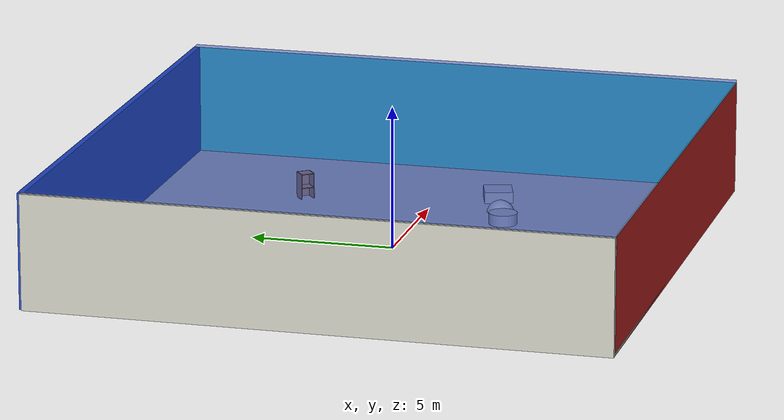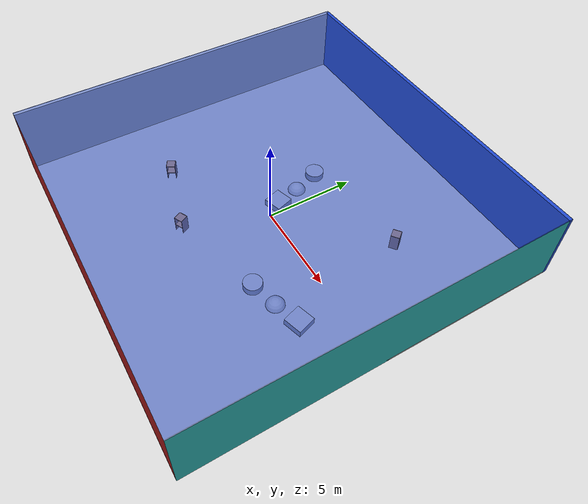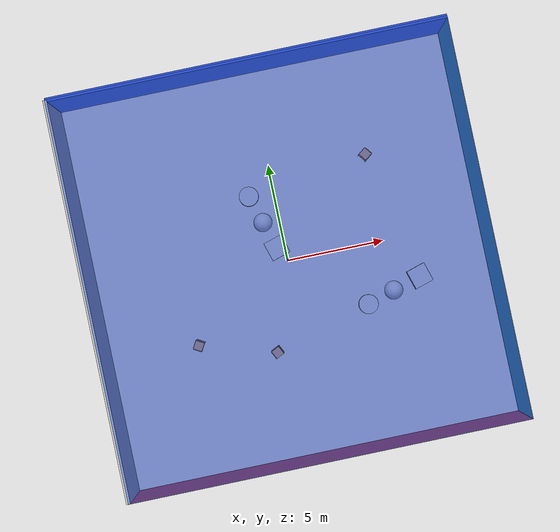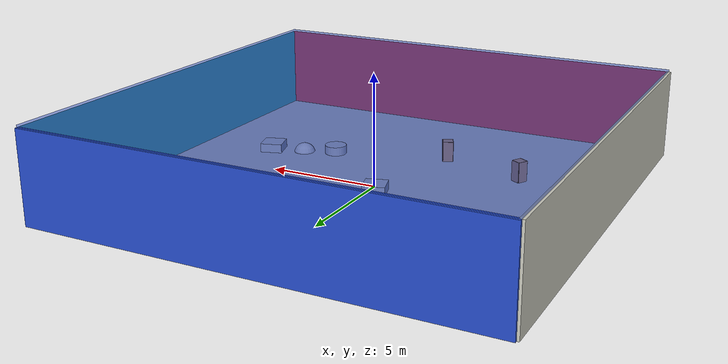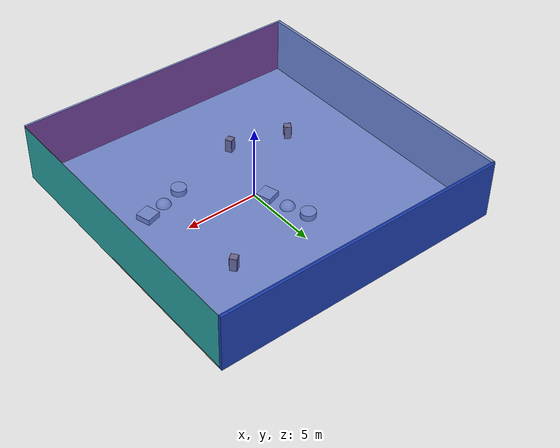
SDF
<sdf version="1.4">
 <world name="default">
  <physics type="ode">
   <max_step_size>0.001</max_step_size>
   <real_time_factor>1</real_time_factor>
   <real_time_update_rate>1000</real_time_update_rate>
   <gravity>0 0 -9.8</gravity>
  </physics>
  <scene><ambient>0.4 0.4 0.4 1</ambient><background>0.7 0.7 0.7 1</background><shadows>1</shadows></scene>
  <model name="Surrounding">
   <static>1</static>
   <link name="Ceiling">
    <collision name="Ceiling_Collision"><geometry><box><size>20 20 0.1</size></box></geometry></collision>
    <visual name="Ceiling_Visual">
     <geometry><box><size>20 20 0.1</size></box></geometry>
     <material>
      <script><uri>file://media/materials/scripts/gazebo.material</uri><name>Gazebo/BlueTransparent</name></script>
     </material>
    </visual>
    <pose>0 0 4.05 0 0 0</pose>
   </link>
   <link name="Wall_South">
    <collision name="Wall_South_Collision">
     <geometry><box><size>20 0 4</size></box></geometry>
     <pose>0 0 2 0 -0 0</pose>
    </collision>
    <visual name="Wall_South_Visual">
     <pose>0 0 2 0 -0 0</pose>
     <geometry><box><size>20 0 4</size></box></geometry>
     <material>
      <script><uri>file://media/materials/scripts/gazebo.material</uri><name>Gazebo/Red</name></script>
     </material>
    </visual>
    <velocity_decay><linear>0</linear><angular>0</angular></velocity_decay>
    <pose>0 -10 0 0 -0 0</pose>
   </link>
   <link name="Wall_East">
    <collision name="Wall_21_Collision">
     <geometry><box><size>20 0 4</size></box></geometry>
     <pose>0 0 2 0 -0 0</pose>
    </collision>
    <visual name="Wall_21_Visual">
     <pose>0 0 2 0 -0 0</pose>
     <geometry><box><size>20 0 4</size></box></geometry>
     <material>
      <script><uri>file://media/materials/scripts/gazebo.material</uri><name>Gazebo/TurquoiseGlow</name></script>
     </material>
    </visual>
    <velocity_decay><linear>0</linear><angular>0</angular></velocity_decay>
    <pose>10 0 0 0 -0 1.5708</pose>
   </link>
   <link name="Wall_North">
    <collision name="Wall_22_Collision">
     <geometry><box><size>20 0.2 4</size></box></geometry>
     <pose>0 0 2 0 -0 0</pose>
    </collision>
    <visual name="Wall_22_Visual">
     <pose>0 0 2 0 -0 0</pose>
     <geometry><box><size>20 0.2 4</size></box></geometry>
     <material>
      <script><uri>file://media/materials/scripts/gazebo.material</uri><name>Gazebo/BlueLaser</name></script>
     </material>
    </visual>
    <velocity_decay><linear>0</linear><angular>0</angular></velocity_decay>
    <pose>0 10 0 0 -0 0</pose>
   </link>
   <link name="Wall_West">
    <collision name="Wall_23_Collision">
     <geometry><box><size>20 0.2 4</size></box></geometry>
     <pose>0 0 2 0 -0 0</pose>
    </collision>
    <visual name="Wall_23_Visual">
     <pose>0 0 2 0 -0 0</pose>
     <geometry><box><size>20 0.2 4</size></box></geometry>
     <material>
      <script><uri>file://media/materials/scripts/gazebo.material</uri><name>Gazebo/PaintedWall</name></script>
     </material>
    </visual>
    <velocity_decay><linear>0</linear><angular>0</angular></velocity_decay>
    <pose>-10 0 0 0 0 -1.5708</pose>
   </link>
   <link name="Ground_link">
    <collision name="collision">
     <pose>0 0 .05 0 -0 0</pose>
     <geometry><box><size>20 20 0.1</size></box></geometry>
    </collision>
    <visual name="visual">
     <pose>0 0 .05 0 -0 0</pose>
     <geometry><box><size>20 20 0.1</size></box></geometry>
     <material>
      <script><uri>file://media/materials/scripts/gazebo.material</uri><name>Gazebo/PioneerBody</name></script>
     </material>
    </visual>
   </link>
   <static>1</static>
  </model>
  <spherical_coordinates>
   <surface_model>EARTH_WGS84</surface_model>
   <latitude_deg>0</latitude_deg>
   <longitude_deg>0</longitude_deg>
   <elevation>0</elevation>
   <heading_deg>0</heading_deg>
  </spherical_coordinates>
  <light name="lightball_0" type="diffuse">
   <diffuse>0.8 0.8 0.8 1</diffuse>
   <specular>0.2 0.2 0.2 1</specular>
   <attenuation>
    <range>100</range>
    <constant>0.7</constant>
    <linear>0.01</linear>
    <quadratic>0.001</quadratic>
   </attenuation>
   <direction>-0.5 0.1 -0.9</direction>
   <pose>2.22981930079 -1.2808501236 3.59296173186 0 0 0</pose>
  </light>
  <light name="lightball_1" type="diffuse">
   <diffuse>0.8 0.8 0.8 1</diffuse>
   <specular>0.2 0.2 0.2 1</specular>
   <attenuation>
    <range>100</range>
    <constant>0.7</constant>
    <linear>0.01</linear>
    <quadratic>0.001</quadratic>
   </attenuation>
   <direction>-0.5 0.1 -0.9</direction>
   <pose>-4.58299904914 -2.44257211701 2.43668174306 0 0 0</pose>
  </light>
  <light name="lightball_2" type="diffuse">
   <diffuse>0.8 0.8 0.8 1</diffuse>
   <specular>0.2 0.2 0.2 1</specular>
   <attenuation>
    <range>100</range>
    <constant>0.7</constant>
    <linear>0.01</linear>
    <quadratic>0.001</quadratic>
   </attenuation>
   <direction>-0.5 0.1 -0.9</direction>
   <pose>-8.28346081367 -4.41921065872 2.29328060737 0 0 0</pose>
  </light>
  <light name="lightball_3" type="diffuse">
   <diffuse>0.8 0.8 0.8 1</diffuse>
   <specular>0.2 0.2 0.2 1</specular>
   <attenuation>
    <range>100</range>
    <constant>0.7</constant>
    <linear>0.01</linear>
    <quadratic>0.001</quadratic>
   </attenuation>
   <direction>-0.5 0.1 -0.9</direction>
   <pose>5.94469593107 -3.0750746616 3.06815724472 0 0 0</pose>
  </light>
  <light name="lightball_4" type="diffuse">
   <diffuse>0.8 0.8 0.8 1</diffuse>
   <specular>0.2 0.2 0.2 1</specular>
   <attenuation>
    <range>100</range>
    <constant>0.7</constant>
    <linear>0.01</linear>
    <quadratic>0.001</quadratic>
   </attenuation>
   <direction>-0.5 0.1 -0.9</direction>
   <pose>6.84008907224 4.72238988988 1.93084237596 0 0 0</pose>
  </light>
  <light name="lightball_5" type="diffuse">
   <diffuse>0.8 0.8 0.8 1</diffuse>
   <specular>0.2 0.2 0.2 1</specular>
   <attenuation>
    <range>100</range>
    <constant>0.7</constant>
    <linear>0.01</linear>
    <quadratic>0.001</quadratic>
   </attenuation>
   <direction>-0.5 0.1 -0.9</direction>
   <pose>-4.52621429418 -1.93145800839 0.598280368626 0 0 0</pose>
  </light>
  <light name="lightball_6" type="diffuse">
   <diffuse>0.8 0.8 0.8 1</diffuse>
   <specular>0.2 0.2 0.2 1</specular>
   <attenuation>
    <range>100</range>
    <constant>0.7</constant>
    <linear>0.01</linear>
    <quadratic>0.001</quadratic>
   </attenuation>
   <direction>-0.5 0.1 -0.9</direction>
   <pose>-5.0768568326 -2.06359058402 3.75779662603 0 0 0</pose>
  </light>
  <include><uri>model://cabinet</uri><pose>-5.3360856807 -3.32494467624 0 0 0 2.61159348111</pose></include>
  <include><uri>model://cabinet</uri><pose>-1.48135909737 -4.48437897178 0 0 0 2.02949080001</pose></include>
  <include>
   <uri>model://textured_shapes</uri>
   <pose>-0.866983795971 2.1894357668 0 0 0 0.294826890362</pose>
  </include>
  <include>
   <uri>model://textured_shapes</uri>
   <pose>5.01324033851 -2.60609006522 0 0 0 1.86684947759</pose>
  </include>
  <include><uri>model://cabinet</uri><pose>4.96124363226 4.49058070798 0 0 0 0.653448570427</pose></include>
 </world>
</sdf>

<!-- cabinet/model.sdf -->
<sdf version="1.5">
  <model name="cabinet">
    <static>true</static>
    <link name="cabinet_bottom_plate">
      <inertial>
        <pose>0 0 -1 0 0 0</pose>
        <inertia>
          <ixx>2.050000</ixx>
          <ixy>0</ixy>
          <ixz>0</ixz>
          <iyy>2.050000</iyy>
          <iyz>0</iyz>
          <izz>2.050000</izz>
        </inertia>
        <mass>25.000000</mass>
      </inertial>
      <collision name="cabinet_bottom_plate_geom">
        <pose>0 0 0.010000 0 0 0</pose>
        <geometry>
          <box>
            <size>0.450000 0.450000 0.020000</size>
          </box>
        </geometry>
      </collision>
      <visual name="cabinet_bottom_plate_geom_visual">
        <pose>0 0 0.010000 0 0 0</pose>
        <geometry>
          <box>
            <size>0.450000 0.450000 0.020000</size>
          </box>
        </geometry>
        <material>
          <script>
            <uri>model://media/materials/scripts/gazebo.material</uri>
            <name>Gazebo/Wood</name>
          </script>
        </material>
      </visual>
      <collision name="cabinet_bottom_plate_geom_cabinet_back_plate">
        <pose>0.235000 0 0.510000 0 0 0</pose>
        <geometry>
          <box>
            <size>0.020000 0.450000 1.020000</size>
          </box>
        </geometry>
      </collision>
      <visual name="cabinet_bottom_plate_geom_cabinet_back_plate_visual">
        <pose>0.235000 0 0.510000 0 0 0</pose>
        <geometry>
          <box>
            <size>0.020000 0.450000 1.020000</size>
          </box>
        </geometry>
        <material>
          <script>
            <uri>model://media/materials/scripts/gazebo.material</uri>
            <name>Gazebo/Wood</name>
          </script>
        </material>
      </visual>
      <collision name="cabinet_bottom_plate_geom_cabinet_left_plate">
        <pose>0 0.235000 0.510000 0 0 0</pose>
        <geometry>
          <box>
            <size>0.450000 0.020000 1.020000</size>
          </box>
        </geometry>
      </collision>
      <visual name="cabinet_bottom_plate_geom_cabinet_left_plate_visual">
        <pose>0 0.235000 0.510000 0 0 0</pose>
        <geometry>
          <box>
            <size>0.450000 0.020000 1.020000</size>
          </box>
        </geometry>
        <material>
          <script>
            <uri>model://media/materials/scripts/gazebo.material</uri>
            <name>Gazebo/Wood</name>
          </script>
        </material>
      </visual>
      <collision name="cabinet_bottom_plate_geom_cabinet_middle_plate">
        <pose>0 0 0.510000 0 0 0</pose>
        <geometry>
          <box>
            <size>0.450000 0.450000 0.020000</size>
          </box>
        </geometry>
      </collision>
      <visual name="cabinet_bottom_plate_geom_cabinet_middle_plate_visual">
        <pose>0 0 0.510000 0 0 0</pose>
        <geometry>
          <box>
            <size>0.450000 0.450000 0.020000</size>
          </box>
        </geometry>
        <material>
          <script>
            <uri>model://media/materials/scripts/gazebo.material</uri>
            <name>Gazebo/Wood</name>
          </script>
        </material>
      </visual>
      <collision name="cabinet_bottom_plate_geom_cabinet_right_plate">
        <pose>0 -0.235000 0.510000 0 0 0</pose>
        <geometry>
          <box>
            <size>0.450000 0.020000 1.020000</size>
          </box>
        </geometry>
      </collision>
      <visual name="cabinet_bottom_plate_geom_cabinet_right_plate_visual">
        <pose>0 -0.235000 0.510000 0 0 0</pose>
        <geometry>
          <box>
            <size>0.450000 0.020000 1.020000</size>
          </box>
        </geometry>
        <material>
          <script>
            <uri>model://media/materials/scripts/gazebo.material</uri>
            <name>Gazebo/Wood</name>
          </script>
        </material>
      </visual>
      <collision name="cabinet_bottom_plate_geom_cabinet_top_plate">
        <pose>0 0 1.010000 0 0 0</pose>
        <geometry>
          <box>
            <size>0.450000 0.450000 0.020000</size>
          </box>
        </geometry>
      </collision>
      <visual name="cabinet_bottom_plate_geom_cabinet_top_plate_visual">
        <pose>0 0 1.010000 0 0 0</pose>
        <geometry>
          <box>
            <size>0.450000 0.450000 0.020000</size>
          </box>
        </geometry>
        <material>
          <script>
            <uri>model://media/materials/scripts/gazebo.material</uri>
            <name>Gazebo/Wood</name>
          </script>
        </material>
      </visual>
    </link>
  </model>
</sdf>

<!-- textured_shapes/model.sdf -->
<sdf version="1.6">
  <model name="textured_shapes">
    <pose>0 0 0.5 0 0 0</pose>
    <link name="box">
      <pose>0 -1.5 0 0 0 0</pose>
      <collision name="collision">
        <geometry>
          <box>
            <size>1 1 1</size>
          </box>
        </geometry>
      </collision>
      <visual name="visual">
        <geometry>
          <box>
            <size>1 1 1</size>
          </box>
        </geometry>
        <material>
          <script>
            <uri>model://../model_source/models/textured_shapes/materials/scripts</uri>
            <uri>model://../model_source/models/textured_shapes/materials/textures</uri>
            <name>TexturedShape/Squares</name>
          </script>
        </material>
      </visual>
    </link>
    <link name="sphere">
      <collision name="collision">
        <geometry>
          <sphere>
            <radius>0.5</radius>
          </sphere>
        </geometry>
      </collision>
      <visual name="visual">
        <geometry>
          <sphere>
            <radius>0.5</radius>
          </sphere>
        </geometry>
        <material>
          <script>
            <uri>model://../model_source/models/textured_shapes/materials/scripts</uri>
            <uri>model://../model_source/models/textured_shapes/materials/textures</uri>
            <name>TexturedShape/Squares</name>
          </script>
        </material>
      </visual>
    </link>
    <link name="cylinder">
      <pose>0 1.5 0 0 0 0</pose>
      <collision name="collision">
        <geometry>
          <cylinder>
            <radius>0.5</radius>
            <length>1</length>
          </cylinder>
        </geometry>
      </collision>
      <visual name="visual">
        <geometry>
          <cylinder>
            <radius>0.5</radius>
            <length>1</length>
          </cylinder>
        </geometry>
        <material>
          <script>
            <uri>model://../model_source/models/textured_shapes/materials/scripts</uri>
            <uri>model://../model_source/models/textured_shapes/materials/textures</uri>
            <name>TexturedShape/Squares</name>
          </script>
        </material>
      </visual>
    </link>
  </model>
</sdf>
